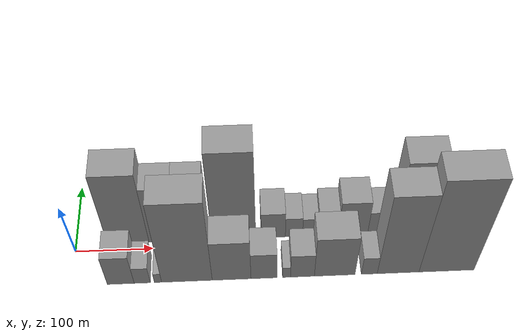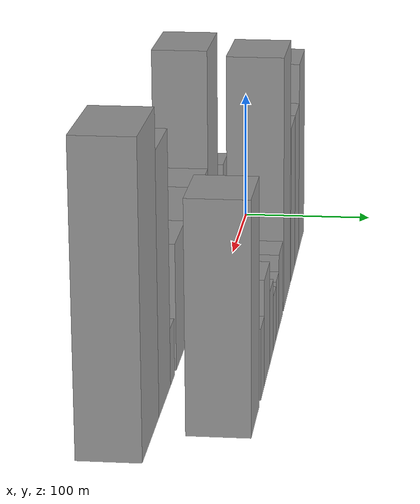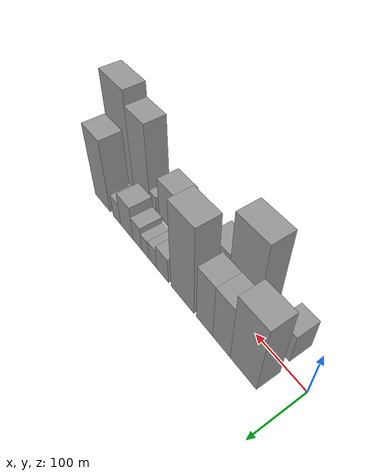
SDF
<sdf version="1.6">
 <world name="default">
  <scene>
   <sky><clouds><speed>12</speed></clouds></sky>
   <ambient>0.4 0.4 0.4 1</ambient>
   <background>0.7 0.7 0.7 1</background>
   <shadows>1</shadows>
  </scene>
  <gravity>0 0 -9.8066</gravity>
  <magnetic_field>6e-06 2.3e-05 -4.2e-05</magnetic_field>
  <physics default="0" name="default_physics" type="ode">
   <ode>
    <solver>
     <type>quick</type>
     <iters>10</iters>
     <sor>1.0</sor>
     <use_dynamic_moi_rescaling>0</use_dynamic_moi_rescaling>
    </solver>
    <constraints>
     <cfm>0</cfm>
     <erp>0.2</erp>
     <contact_max_correcting_vel>100</contact_max_correcting_vel>
     <contact_surface_layer>0.001</contact_surface_layer>
    </constraints>
   </ode>
   <max_step_size>0.004</max_step_size>
   <real_time_factor>1</real_time_factor>
   <real_time_update_rate>250</real_time_update_rate>
  </physics>
  <light name="sun" type="directional">
   <pose>0 0 10 0 0 0</pose>
   <diffuse>0.8 0.8 0.8 1</diffuse>
   <specular>0.2 0.2 0.2 1</specular>
   <attenuation>
    <range>1000</range>
    <constant>0.9</constant>
    <linear>0.01</linear>
    <quadratic>0.001</quadratic>
   </attenuation>
   <direction>-0.5 0.1 -0.9</direction>
  </light>
  <model name="building_1">
   <static>1</static>
   <pose>66.9734 30.0000 0 0.000000 0.000000 1.570796</pose>
   <link name="link">
    <pose>0 0 73.50 0 0 0</pose>
    <collision name="collision"><geometry><box><size>40.0000 53.9467 147.0000</size></box></geometry></collision>
    <visual name="visual">
     <cast_shadows>0</cast_shadows>
     <geometry><box><size>40.0000 53.9467 147.0000</size></box></geometry>
     <material>
      <script>
       <uri>model://grey_wall/materials/scripts</uri>
       <uri>model://grey_wall/materials/textures</uri>
       <name>vrc/grey_wall</name>
      </script>
     </material>
    </visual>
   </link>
  </model>
  <model name="building_2">
   <static>1</static>
   <pose>112.8626 30.0000 0 0.000000 0.000000 1.570796</pose>
   <link name="link">
    <pose>0 0 58.50 0 0 0</pose>
    <collision name="collision"><geometry><box><size>40.0000 37.8317 117.0000</size></box></geometry></collision>
    <visual name="visual">
     <cast_shadows>0</cast_shadows>
     <geometry><box><size>40.0000 37.8317 117.0000</size></box></geometry>
     <material>
      <script>
       <uri>model://grey_wall/materials/scripts</uri>
       <uri>model://grey_wall/materials/textures</uri>
       <name>vrc/grey_wall</name>
      </script>
     </material>
    </visual>
   </link>
  </model>
  <model name="building_3">
   <static>1</static>
   <pose>150.6819 30.0000 0 0.000000 0.000000 1.570796</pose>
   <link name="link">
    <pose>0 0 58.50 0 0 0</pose>
    <collision name="collision"><geometry><box><size>40.0000 37.8070 117.0000</size></box></geometry></collision>
    <visual name="visual">
     <cast_shadows>0</cast_shadows>
     <geometry><box><size>40.0000 37.8070 117.0000</size></box></geometry>
     <material>
      <script>
       <uri>model://grey_wall/materials/scripts</uri>
       <uri>model://grey_wall/materials/textures</uri>
       <name>vrc/grey_wall</name>
      </script>
     </material>
    </visual>
   </link>
  </model>
  <model name="building_4">
   <static>1</static>
   <pose>204.2117 30.0000 0 0.000000 0.000000 1.570796</pose>
   <link name="link">
    <pose>0 0 91.50 0 0 0</pose>
    <collision name="collision"><geometry><box><size>40.0000 57.2525 183.0000</size></box></geometry></collision>
    <visual name="visual">
     <cast_shadows>0</cast_shadows>
     <geometry><box><size>40.0000 57.2525 183.0000</size></box></geometry>
     <material>
      <script>
       <uri>model://grey_wall/materials/scripts</uri>
       <uri>model://grey_wall/materials/textures</uri>
       <name>vrc/grey_wall</name>
      </script>
     </material>
    </visual>
   </link>
  </model>
  <model name="building_5">
   <static>1</static>
   <pose>255.5559 30.0000 0 0.000000 0.000000 1.570796</pose>
   <link name="link">
    <pose>0 0 27.00 0 0 0</pose>
    <collision name="collision"><geometry><box><size>40.0000 31.4360 54.0000</size></box></geometry></collision>
    <visual name="visual">
     <cast_shadows>0</cast_shadows>
     <geometry><box><size>40.0000 31.4360 54.0000</size></box></geometry>
     <material>
      <script>
       <uri>model://grey_wall/materials/scripts</uri>
       <uri>model://grey_wall/materials/textures</uri>
       <name>vrc/grey_wall</name>
      </script>
     </material>
    </visual>
   </link>
  </model>
  <model name="building_6">
   <static>1</static>
   <pose>282.4341 30.0000 0 0.000000 0.000000 1.570796</pose>
   <link name="link">
    <pose>0 0 21.00 0 0 0</pose>
    <collision name="collision"><geometry><box><size>40.0000 22.3205 42.0000</size></box></geometry></collision>
    <visual name="visual">
     <cast_shadows>0</cast_shadows>
     <geometry><box><size>40.0000 22.3205 42.0000</size></box></geometry>
     <material>
      <script>
       <uri>model://grey_wall/materials/scripts</uri>
       <uri>model://grey_wall/materials/textures</uri>
       <name>vrc/grey_wall</name>
      </script>
     </material>
    </visual>
   </link>
  </model>
  <model name="building_7">
   <static>1</static>
   <pose>303.8265 30.0000 0 0.000000 0.000000 1.570796</pose>
   <link name="link">
    <pose>0 0 19.50 0 0 0</pose>
    <collision name="collision"><geometry><box><size>40.0000 20.4643 39.0000</size></box></geometry></collision>
    <visual name="visual">
     <cast_shadows>0</cast_shadows>
     <geometry><box><size>40.0000 20.4643 39.0000</size></box></geometry>
     <material>
      <script>
       <uri>model://grey_wall/materials/scripts</uri>
       <uri>model://grey_wall/materials/textures</uri>
       <name>vrc/grey_wall</name>
      </script>
     </material>
    </visual>
   </link>
  </model>
  <model name="building_8">
   <static>1</static>
   <pose>327.4863 30.0000 0 0.000000 0.000000 1.570796</pose>
   <link name="link">
    <pose>0 0 25.50 0 0 0</pose>
    <collision name="collision"><geometry><box><size>40.0000 26.8554 51.0000</size></box></geometry></collision>
    <visual name="visual">
     <cast_shadows>0</cast_shadows>
     <geometry><box><size>40.0000 26.8554 51.0000</size></box></geometry>
     <material>
      <script>
       <uri>model://grey_wall/materials/scripts</uri>
       <uri>model://grey_wall/materials/textures</uri>
       <name>vrc/grey_wall</name>
      </script>
     </material>
    </visual>
   </link>
  </model>
  <model name="building_9">
   <static>1</static>
   <pose>359.9382 30.0000 0 0.000000 0.000000 1.570796</pose>
   <link name="link">
    <pose>0 0 36.00 0 0 0</pose>
    <collision name="collision"><geometry><box><size>40.0000 38.0484 72.0000</size></box></geometry></collision>
    <visual name="visual">
     <cast_shadows>0</cast_shadows>
     <geometry><box><size>40.0000 38.0484 72.0000</size></box></geometry>
     <material>
      <script>
       <uri>model://grey_wall/materials/scripts</uri>
       <uri>model://grey_wall/materials/textures</uri>
       <name>vrc/grey_wall</name>
      </script>
     </material>
    </visual>
   </link>
  </model>
  <model name="building_10">
   <static>1</static>
   <pose>391.1790 30.0000 0 0.000000 0.000000 1.570796</pose>
   <link name="link">
    <pose>0 0 24.00 0 0 0</pose>
    <collision name="collision"><geometry><box><size>40.0000 24.4331 48.0000</size></box></geometry></collision>
    <visual name="visual">
     <cast_shadows>0</cast_shadows>
     <geometry><box><size>40.0000 24.4331 48.0000</size></box></geometry>
     <material>
      <script>
       <uri>model://grey_wall/materials/scripts</uri>
       <uri>model://grey_wall/materials/textures</uri>
       <name>vrc/grey_wall</name>
      </script>
     </material>
    </visual>
   </link>
  </model>
  <model name="building_11">
   <static>1</static>
   <pose>439.0586 30.0000 0 0.000000 0.000000 1.570796</pose>
   <link name="link">
    <pose>0 0 75.00 0 0 0</pose>
    <collision name="collision"><geometry><box><size>40.0000 51.3263 150.0000</size></box></geometry></collision>
    <visual name="visual">
     <cast_shadows>0</cast_shadows>
     <geometry><box><size>40.0000 51.3263 150.0000</size></box></geometry>
     <material>
      <script>
       <uri>model://grey_wall/materials/scripts</uri>
       <uri>model://grey_wall/materials/textures</uri>
       <name>vrc/grey_wall</name>
      </script>
     </material>
    </visual>
   </link>
  </model>
  <model name="building_12">
   <static>1</static>
   <pose>60.8391 -30.0000 0 0.000000 0.000000 1.570796</pose>
   <link name="link">
    <pose>0 0 31.50 0 0 0</pose>
    <collision name="collision"><geometry><box><size>40.0000 33.6782 63.0000</size></box></geometry></collision>
    <visual name="visual">
     <cast_shadows>0</cast_shadows>
     <geometry><box><size>40.0000 33.6782 63.0000</size></box></geometry>
     <material>
      <script>
       <uri>model://grey_wall/materials/scripts</uri>
       <uri>model://grey_wall/materials/textures</uri>
       <name>vrc/grey_wall</name>
      </script>
     </material>
    </visual>
   </link>
  </model>
  <model name="building_13">
   <static>1</static>
   <pose>87.7919 -30.0000 0 0.000000 0.000000 1.570796</pose>
   <link name="link">
    <pose>0 0 18.00 0 0 0</pose>
    <collision name="collision"><geometry><box><size>40.0000 20.2273 36.0000</size></box></geometry></collision>
    <visual name="visual">
     <cast_shadows>0</cast_shadows>
     <geometry><box><size>40.0000 20.2273 36.0000</size></box></geometry>
     <material>
      <script>
       <uri>model://grey_wall/materials/scripts</uri>
       <uri>model://grey_wall/materials/textures</uri>
       <name>vrc/grey_wall</name>
      </script>
     </material>
    </visual>
   </link>
  </model>
  <model name="building_14">
   <static>1</static>
   <pose>107.4471 -30.0000 0 0.000000 0.000000 1.570796</pose>
   <link name="link">
    <pose>0 0 10.50 0 0 0</pose>
    <collision name="collision"><geometry><box><size>40.0000 9.0832 21.0000</size></box></geometry></collision>
    <visual name="visual">
     <cast_shadows>0</cast_shadows>
     <geometry><box><size>40.0000 9.0832 21.0000</size></box></geometry>
     <material>
      <script>
       <uri>model://grey_wall/materials/scripts</uri>
       <uri>model://grey_wall/materials/textures</uri>
       <name>vrc/grey_wall</name>
      </script>
     </material>
    </visual>
   </link>
  </model>
  <model name="building_15">
   <static>1</static>
   <pose>143.8506 -30.0000 0 0.000000 0.000000 1.570796</pose>
   <link name="link">
    <pose>0 0 87.00 0 0 0</pose>
    <collision name="collision"><geometry><box><size>40.0000 63.7238 174.0000</size></box></geometry></collision>
    <visual name="visual">
     <cast_shadows>0</cast_shadows>
     <geometry><box><size>40.0000 63.7238 174.0000</size></box></geometry>
     <material>
      <script>
       <uri>model://grey_wall/materials/scripts</uri>
       <uri>model://grey_wall/materials/textures</uri>
       <name>vrc/grey_wall</name>
      </script>
     </material>
    </visual>
   </link>
  </model>
  <model name="building_16">
   <static>1</static>
   <pose>200.1284 -30.0000 0 0.000000 0.000000 1.570796</pose>
   <link name="link">
    <pose>0 0 43.50 0 0 0</pose>
    <collision name="collision"><geometry><box><size>40.0000 48.8318 87.0000</size></box></geometry></collision>
    <visual name="visual">
     <cast_shadows>0</cast_shadows>
     <geometry><box><size>40.0000 48.8318 87.0000</size></box></geometry>
     <material>
      <script>
       <uri>model://grey_wall/materials/scripts</uri>
       <uri>model://grey_wall/materials/textures</uri>
       <name>vrc/grey_wall</name>
      </script>
     </material>
    </visual>
   </link>
  </model>
  <model name="building_17">
   <static>1</static>
   <pose>241.0071 -30.0000 0 0.000000 0.000000 1.570796</pose>
   <link name="link">
    <pose>0 0 28.50 0 0 0</pose>
    <collision name="collision"><geometry><box><size>40.0000 32.9256 57.0000</size></box></geometry></collision>
    <visual name="visual">
     <cast_shadows>0</cast_shadows>
     <geometry><box><size>40.0000 32.9256 57.0000</size></box></geometry>
     <material>
      <script>
       <uri>model://grey_wall/materials/scripts</uri>
       <uri>model://grey_wall/materials/textures</uri>
       <name>vrc/grey_wall</name>
      </script>
     </material>
    </visual>
   </link>
  </model>
  <model name="building_18">
   <static>1</static>
   <pose>269.4883 -30.0000 0 0.000000 0.000000 1.570796</pose>
   <link name="link">
    <pose>0 0 12.00 0 0 0</pose>
    <collision name="collision"><geometry><box><size>40.0000 10.0369 24.0000</size></box></geometry></collision>
    <visual name="visual">
     <cast_shadows>0</cast_shadows>
     <geometry><box><size>40.0000 10.0369 24.0000</size></box></geometry>
     <material>
      <script>
       <uri>model://grey_wall/materials/scripts</uri>
       <uri>model://grey_wall/materials/textures</uri>
       <name>vrc/grey_wall</name>
      </script>
     </material>
    </visual>
   </link>
  </model>
  <model name="building_19">
   <static>1</static>
   <pose>289.6140 -30.0000 0 0.000000 0.000000 1.570796</pose>
   <link name="link">
    <pose>0 0 25.50 0 0 0</pose>
    <collision name="collision"><geometry><box><size>40.0000 30.2144 51.0000</size></box></geometry></collision>
    <visual name="visual">
     <cast_shadows>0</cast_shadows>
     <geometry><box><size>40.0000 30.2144 51.0000</size></box></geometry>
     <material>
      <script>
       <uri>model://grey_wall/materials/scripts</uri>
       <uri>model://grey_wall/materials/textures</uri>
       <name>vrc/grey_wall</name>
      </script>
     </material>
    </visual>
   </link>
  </model>
  <model name="building_20">
   <static>1</static>
   <pose>330.5488 -30.0000 0 0.000000 0.000000 1.570796</pose>
   <link name="link">
    <pose>0 0 43.50 0 0 0</pose>
    <collision name="collision"><geometry><box><size>40.0000 51.6553 87.0000</size></box></geometry></collision>
    <visual name="visual">
     <cast_shadows>0</cast_shadows>
     <geometry><box><size>40.0000 51.6553 87.0000</size></box></geometry>
     <material>
      <script>
       <uri>model://grey_wall/materials/scripts</uri>
       <uri>model://grey_wall/materials/textures</uri>
       <name>vrc/grey_wall</name>
      </script>
     </material>
    </visual>
   </link>
  </model>
  <model name="building_21">
   <static>1</static>
   <pose>374.4280 -30.0000 0 0.000000 0.000000 1.570796</pose>
   <link name="link">
    <pose>0 0 19.50 0 0 0</pose>
    <collision name="collision"><geometry><box><size>40.0000 20.1032 39.0000</size></box></geometry></collision>
    <visual name="visual">
     <cast_shadows>0</cast_shadows>
     <geometry><box><size>40.0000 20.1032 39.0000</size></box></geometry>
     <material>
      <script>
       <uri>model://grey_wall/materials/scripts</uri>
       <uri>model://grey_wall/materials/textures</uri>
       <name>vrc/grey_wall</name>
      </script>
     </material>
    </visual>
   </link>
  </model>
  <model name="building_22">
   <static>1</static>
   <pose>411.0957 -30.0000 0 0.000000 0.000000 1.570796</pose>
   <link name="link">
    <pose>0 0 85.50 0 0 0</pose>
    <collision name="collision"><geometry><box><size>40.0000 53.2321 171.0000</size></box></geometry></collision>
    <visual name="visual">
     <cast_shadows>0</cast_shadows>
     <geometry><box><size>40.0000 53.2321 171.0000</size></box></geometry>
     <material>
      <script>
       <uri>model://grey_wall/materials/scripts</uri>
       <uri>model://grey_wall/materials/textures</uri>
       <name>vrc/grey_wall</name>
      </script>
     </material>
    </visual>
   </link>
  </model>
  <model name="building_23">
   <static>1</static>
   <pose>472.9322 -30.0000 0 0.000000 0.000000 1.570796</pose>
   <link name="link">
    <pose>0 0 99.00 0 0 0</pose>
    <collision name="collision"><geometry><box><size>40.0000 70.4409 198.0000</size></box></geometry></collision>
    <visual name="visual">
     <cast_shadows>0</cast_shadows>
     <geometry><box><size>40.0000 70.4409 198.0000</size></box></geometry>
     <material>
      <script>
       <uri>model://grey_wall/materials/scripts</uri>
       <uri>model://grey_wall/materials/textures</uri>
       <name>vrc/grey_wall</name>
      </script>
     </material>
    </visual>
   </link>
  </model>
 </world>
</sdf>
